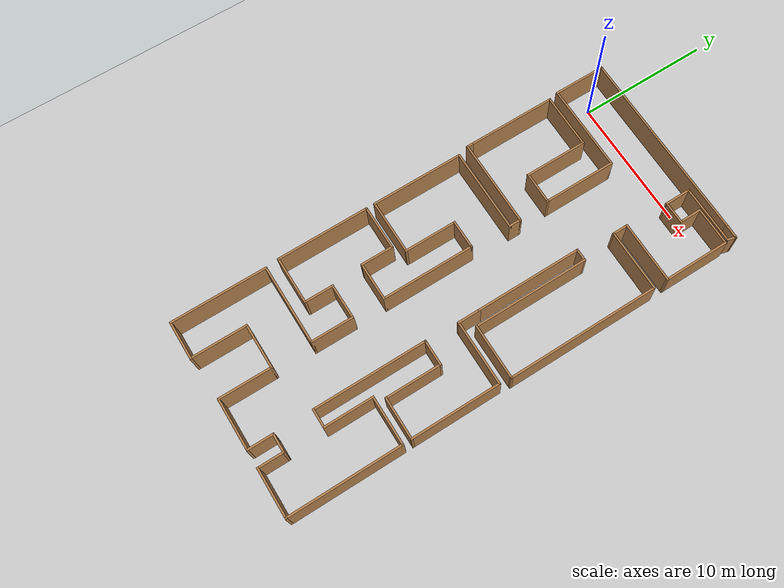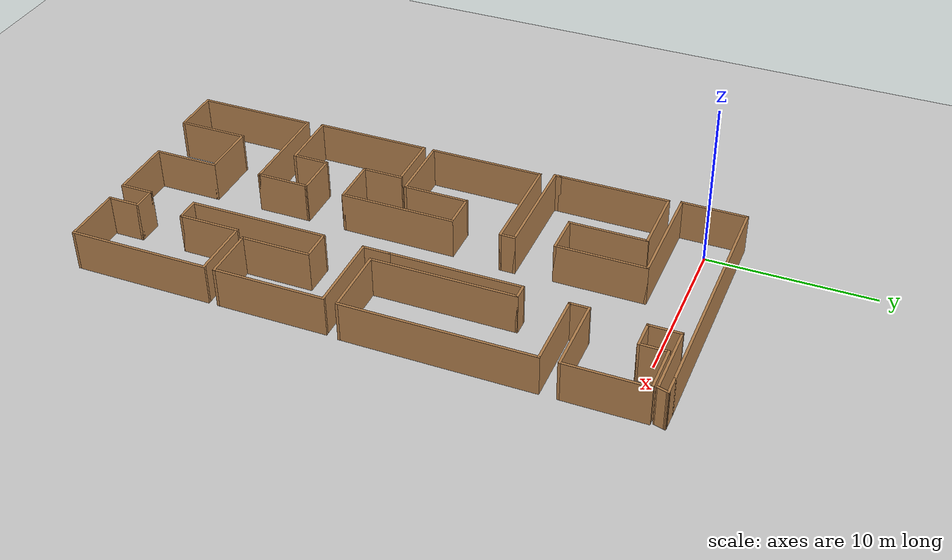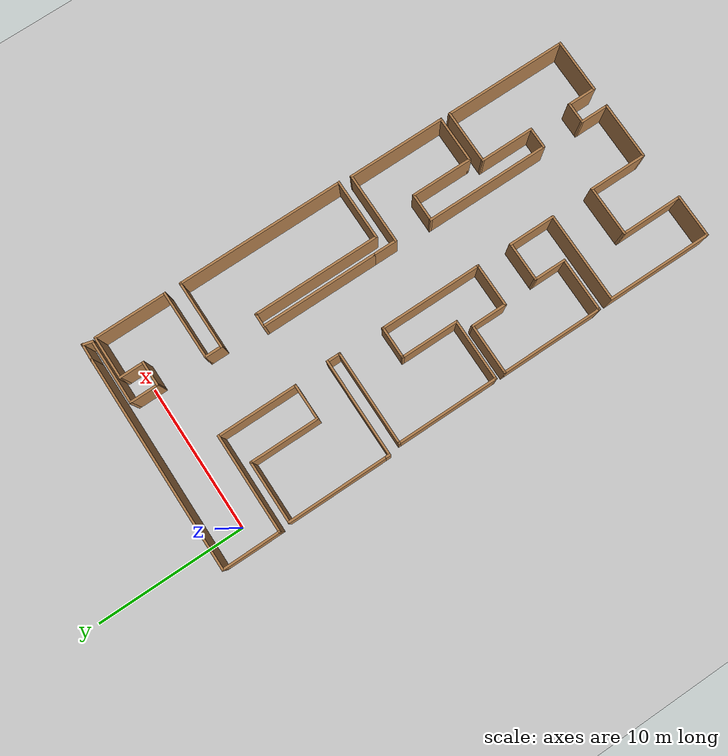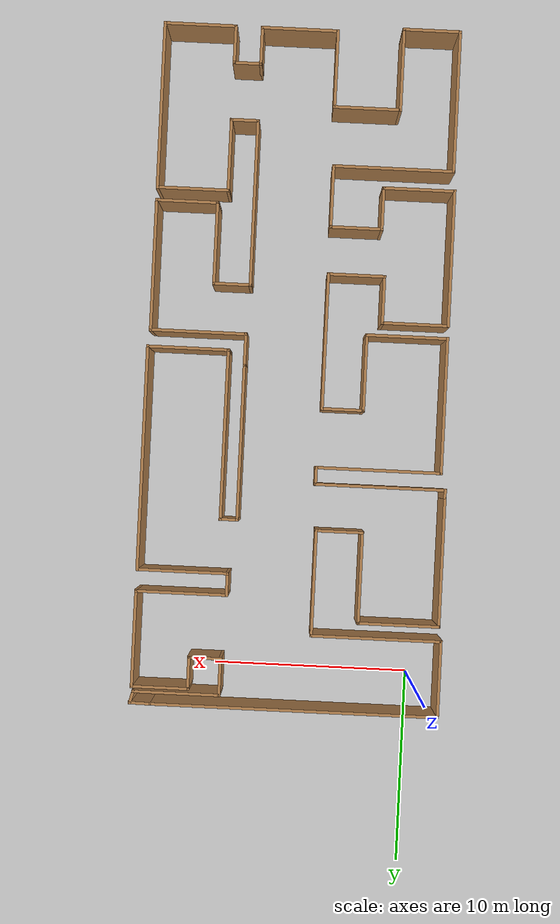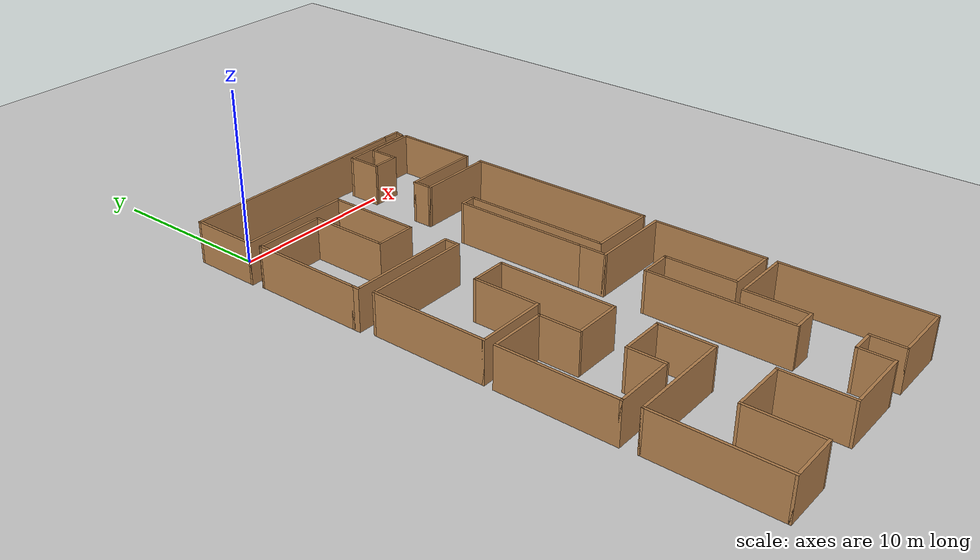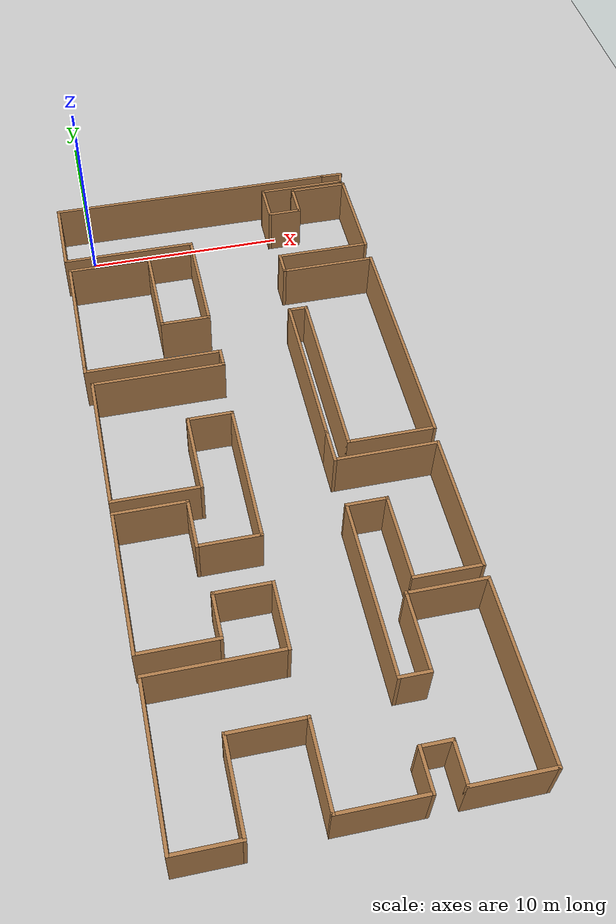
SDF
<sdf version="1.6">
 <world name="default">
  <model name="ground_plane">
   <static>1</static>
   <link name="link">
    <collision name="collision">
     <geometry><plane><normal>0 0 1</normal><size>100 100</size></plane></geometry>
     <surface>
      <contact><collide_bitmask>65535</collide_bitmask></contact>
      <friction><ode><mu>100</mu><mu2>50</mu2></ode></friction>
     </surface>
    </collision>
    <visual name="visual">
     <cast_shadows>0</cast_shadows>
     <geometry><plane><normal>0 0 1</normal><size>100 100</size></plane></geometry>
     <material>
      <script><uri>file://media/materials/scripts/gazebo.material</uri><name>Gazebo/Grey</name></script>
     </material>
    </visual>
   </link>
  </model>
  <model name="eight_comodos">
   <pose>6.30597 -15.5274 0 0 -0 -1.57142</pose>
   <link name="Wall_1">
    <collision name="Wall_1_Collision">
     <geometry><box><size>14.75 0.15 2.5</size></box></geometry>
     <pose>0 0 1.25 0 -0 0</pose>
    </collision>
    <visual name="Wall_1_Visual">
     <pose>0 0 1.25 0 -0 0</pose>
     <geometry><box><size>14.75 0.15 2.5</size></box></geometry>
     <material>
      <script><uri>file://media/materials/scripts/gazebo.material</uri><name>Gazebo/Wood</name></script>
      <ambient>1 1 1 1</ambient>
     </material>
     <meta><layer>0</layer></meta>
    </visual>
    <pose>-17.4243 -0.536073 0 0 -0 -1.5708</pose>
   </link>
   <link name="Wall_10">
    <collision name="Wall_10_Collision">
     <geometry><box><size>0.5 0.15 2.5</size></box></geometry>
     <pose>0 0 1.25 0 -0 0</pose>
    </collision>
    <visual name="Wall_10_Visual">
     <pose>0 0 1.25 0 -0 0</pose>
     <geometry><box><size>0.5 0.15 2.5</size></box></geometry>
     <material>
      <script><uri>file://media/materials/scripts/gazebo.material</uri><name>Gazebo/Wood</name></script>
      <ambient>1 1 1 1</ambient>
     </material>
     <meta><layer>0</layer></meta>
    </visual>
    <pose>-6.04928 -7.68607 0 0 -0 0</pose>
   </link>
   <link name="Wall_11">
    <collision name="Wall_11_Collision">
     <geometry><box><size>6.75 0.15 2.5</size></box></geometry>
     <pose>0 0 1.25 0 -0 0</pose>
    </collision>
    <visual name="Wall_11_Visual">
     <pose>0 0 1.25 0 -0 0</pose>
     <geometry><box><size>6.75 0.15 2.5</size></box></geometry>
     <material>
      <script><uri>file://media/materials/scripts/gazebo.material</uri><name>Gazebo/Wood</name></script>
      <ambient>1 1 1 1</ambient>
     </material>
     <meta><layer>0</layer></meta>
    </visual>
    <pose>-5.87428 -4.38607 0 0 -0 1.5708</pose>
   </link>
   <link name="Wall_12">
    <collision name="Wall_12_Collision">
     <geometry><box><size>1 0.15 2.5</size></box></geometry>
     <pose>0 0 1.25 0 -0 0</pose>
    </collision>
    <visual name="Wall_12_Visual">
     <pose>0 0 1.25 0 -0 0</pose>
     <geometry><box><size>1 0.15 2.5</size></box></geometry>
     <material>
      <script><uri>file://media/materials/scripts/gazebo.material</uri><name>Gazebo/Wood</name></script>
      <ambient>1 1 1 1</ambient>
     </material>
     <meta><layer>0</layer></meta>
    </visual>
    <pose>-5.44928 -1.08607 0 0 -0 0</pose>
   </link>
   <link name="Wall_13">
    <collision name="Wall_13_Collision">
     <geometry><box><size>6.5 0.15 2.5</size></box></geometry>
     <pose>0 0 1.25 0 -0 0</pose>
    </collision>
    <visual name="Wall_13_Visual">
     <pose>0 0 1.25 0 -0 0</pose>
     <geometry><box><size>6.5 0.15 2.5</size></box></geometry>
     <material>
      <script><uri>file://media/materials/scripts/gazebo.material</uri><name>Gazebo/Wood</name></script>
      <ambient>1 1 1 1</ambient>
     </material>
     <meta><layer>0</layer></meta>
    </visual>
    <pose>-5.02428 -4.26107 0 0 -0 -1.5708</pose>
   </link>
   <link name="Wall_14">
    <collision name="Wall_14_Collision">
     <geometry><box><size>7 0.15 2.5</size></box></geometry>
     <pose>0 0 1.25 0 -0 0</pose>
    </collision>
    <visual name="Wall_14_Visual">
     <pose>0 0 1.25 0 -0 0</pose>
     <geometry><box><size>7 0.15 2.5</size></box></geometry>
     <material>
      <script><uri>file://media/materials/scripts/gazebo.material</uri><name>Gazebo/Wood</name></script>
      <ambient>1 1 1 1</ambient>
     </material>
     <meta><layer>0</layer></meta>
    </visual>
    <pose>-1.59928 -7.43607 0 0 -0 0</pose>
   </link>
   <link name="Wall_15">
    <collision name="Wall_15_Collision">
     <geometry><box><size>4.25 0.15 2.5</size></box></geometry>
     <pose>0 0 1.25 0 -0 0</pose>
    </collision>
    <visual name="Wall_15_Visual">
     <pose>0 0 1.25 0 -0 0</pose>
     <geometry><box><size>4.25 0.15 2.5</size></box></geometry>
     <material>
      <script><uri>file://media/materials/scripts/gazebo.material</uri><name>Gazebo/Wood</name></script>
      <ambient>1 1 1 1</ambient>
     </material>
     <meta><layer>0</layer></meta>
    </visual>
    <pose>1.82572 -5.38607 0 0 -0 1.5708</pose>
   </link>
   <link name="Wall_16">
    <collision name="Wall_16_Collision">
     <geometry><box><size>4 0.15 2.5</size></box></geometry>
     <pose>0 0 1.25 0 -0 0</pose>
    </collision>
    <visual name="Wall_16_Visual">
     <pose>0 0 1.25 0 -0 0</pose>
     <geometry><box><size>4 0.15 2.5</size></box></geometry>
     <material>
      <script><uri>file://media/materials/scripts/gazebo.material</uri><name>Gazebo/Wood</name></script>
      <ambient>1 1 1 1</ambient>
     </material>
     <meta><layer>0</layer></meta>
    </visual>
    <pose>-0.09928 -3.33607 0 0 -0 3.14159</pose>
   </link>
   <link name="Wall_17">
    <collision name="Wall_17_Collision">
     <geometry><box><size>2.25 0.15 2.5</size></box></geometry>
     <pose>0 0 1.25 0 -0 0</pose>
    </collision>
    <visual name="Wall_17_Visual">
     <pose>0 0 1.25 0 -0 0</pose>
     <geometry><box><size>2.25 0.15 2.5</size></box></geometry>
     <material>
      <script><uri>file://media/materials/scripts/gazebo.material</uri><name>Gazebo/Wood</name></script>
      <ambient>1 1 1 1</ambient>
     </material>
     <meta><layer>0</layer></meta>
    </visual>
    <pose>-2.02428 -2.28607 0 0 -0 1.5708</pose>
   </link>
   <link name="Wall_18">
    <collision name="Wall_18_Collision">
     <geometry><box><size>7 0.15 2.5</size></box></geometry>
     <pose>0 0 1.25 0 -0 0</pose>
    </collision>
    <visual name="Wall_18_Visual">
     <pose>0 0 1.25 0 -0 0</pose>
     <geometry><box><size>7 0.15 2.5</size></box></geometry>
     <material>
      <script><uri>file://media/materials/scripts/gazebo.material</uri><name>Gazebo/Wood</name></script>
      <ambient>1 1 1 1</ambient>
     </material>
     <meta><layer>0</layer></meta>
    </visual>
    <pose>1.40072 -1.23607 0 0 -0 0</pose>
   </link>
   <link name="Wall_19">
    <collision name="Wall_19_Collision">
     <geometry><box><size>3 0.15 2.5</size></box></geometry>
     <pose>0 0 1.25 0 -0 0</pose>
    </collision>
    <visual name="Wall_19_Visual">
     <pose>0 0 1.25 0 -0 0</pose>
     <geometry><box><size>3 0.15 2.5</size></box></geometry>
     <material>
      <script><uri>file://media/materials/scripts/gazebo.material</uri><name>Gazebo/Wood</name></script>
      <ambient>1 1 1 1</ambient>
     </material>
     <meta><layer>0</layer></meta>
    </visual>
    <pose>4.82572 -2.66107 0 0 -0 -1.5708</pose>
   </link>
   <link name="Wall_2">
    <collision name="Wall_2_Collision">
     <geometry><box><size>4 0.15 2.5</size></box></geometry>
     <pose>0 0 1.25 0 -0 0</pose>
    </collision>
    <visual name="Wall_2_Visual">
     <pose>0 0 1.25 0 -0 0</pose>
     <geometry><box><size>4 0.15 2.5</size></box></geometry>
     <material>
      <script><uri>file://media/materials/scripts/gazebo.material</uri><name>Gazebo/Wood</name></script>
      <ambient>1 1 1 1</ambient>
     </material>
     <meta><layer>0</layer></meta>
    </visual>
    <pose>-15.4993 -7.83607 0 0 -0 0</pose>
   </link>
   <link name="Wall_20">
    <collision name="Wall_20_Collision">
     <geometry><box><size>2.5 0.15 2.5</size></box></geometry>
     <pose>0 0 1.25 0 -0 0</pose>
    </collision>
    <visual name="Wall_20_Visual">
     <pose>0 0 1.25 0 -0 0</pose>
     <geometry><box><size>2.5 0.15 2.5</size></box></geometry>
     <material>
      <script><uri>file://media/materials/scripts/gazebo.material</uri><name>Gazebo/Wood</name></script>
      <ambient>1 1 1 1</ambient>
     </material>
     <meta><layer>0</layer></meta>
    </visual>
    <pose>3.65072 -4.08607 0 0 -0 3.14159</pose>
   </link>
   <link name="Wall_21">
    <collision name="Wall_21_Collision">
     <geometry><box><size>3.5 0.15 2.5</size></box></geometry>
     <pose>0 0 1.25 0 -0 0</pose>
    </collision>
    <visual name="Wall_21_Visual">
     <pose>0 0 1.25 0 -0 0</pose>
     <geometry><box><size>3.5 0.15 2.5</size></box></geometry>
     <material>
      <script><uri>file://media/materials/scripts/gazebo.material</uri><name>Gazebo/Wood</name></script>
      <ambient>1 1 1 1</ambient>
     </material>
     <meta><layer>0</layer></meta>
    </visual>
    <pose>2.47572 -5.76107 0 0 -0 -1.5708</pose>
   </link>
   <link name="Wall_22">
    <collision name="Wall_22_Collision">
     <geometry><box><size>7 0.15 2.5</size></box></geometry>
     <pose>0 0 1.25 0 -0 0</pose>
    </collision>
    <visual name="Wall_22_Visual">
     <pose>0 0 1.25 0 -0 0</pose>
     <geometry><box><size>7 0.15 2.5</size></box></geometry>
     <material>
      <script><uri>file://media/materials/scripts/gazebo.material</uri><name>Gazebo/Wood</name></script>
      <ambient>1 1 1 1</ambient>
     </material>
     <meta><layer>0</layer></meta>
    </visual>
    <pose>5.90072 -7.43607 0 0 -0 0</pose>
   </link>
   <link name="Wall_23">
    <collision name="Wall_23_Collision">
     <geometry><box><size>3.75 0.15 2.5</size></box></geometry>
     <pose>0 0 1.25 0 -0 0</pose>
    </collision>
    <visual name="Wall_23_Visual">
     <pose>0 0 1.25 0 -0 0</pose>
     <geometry><box><size>3.75 0.15 2.5</size></box></geometry>
     <material>
      <script><uri>file://media/materials/scripts/gazebo.material</uri><name>Gazebo/Wood</name></script>
      <ambient>1 1 1 1</ambient>
     </material>
     <meta><layer>0</layer></meta>
    </visual>
    <pose>9.32572 -5.63607 0 0 -0 1.5708</pose>
   </link>
   <link name="Wall_24">
    <collision name="Wall_24_Collision">
     <geometry><box><size>2.25 0.15 2.5</size></box></geometry>
     <pose>0 0 1.25 0 -0 0</pose>
    </collision>
    <visual name="Wall_24_Visual">
     <pose>0 0 1.25 0 -0 0</pose>
     <geometry><box><size>2.25 0.15 2.5</size></box></geometry>
     <material>
      <script><uri>file://media/materials/scripts/gazebo.material</uri><name>Gazebo/Wood</name></script>
      <ambient>1 1 1 1</ambient>
     </material>
     <meta><layer>0</layer></meta>
    </visual>
    <pose>8.27572 -3.83607 0 0 -0 3.14159</pose>
   </link>
   <link name="Wall_25">
    <collision name="Wall_25_Collision">
     <geometry><box><size>2.75 0.15 2.5</size></box></geometry>
     <pose>0 0 1.25 0 -0 0</pose>
    </collision>
    <visual name="Wall_25_Visual">
     <pose>0 0 1.25 0 -0 0</pose>
     <geometry><box><size>2.75 0.15 2.5</size></box></geometry>
     <material>
      <script><uri>file://media/materials/scripts/gazebo.material</uri><name>Gazebo/Wood</name></script>
      <ambient>1 1 1 1</ambient>
     </material>
     <meta><layer>0</layer></meta>
    </visual>
    <pose>7.22572 -2.53607 0 0 -0 1.5708</pose>
   </link>
   <link name="Wall_26">
    <collision name="Wall_26_Collision">
     <geometry><box><size>3.25 0.15 2.5</size></box></geometry>
     <pose>0 0 1.25 0 -0 0</pose>
    </collision>
    <visual name="Wall_26_Visual">
     <pose>0 0 1.25 0 -0 0</pose>
     <geometry><box><size>3.25 0.15 2.5</size></box></geometry>
     <material>
      <script><uri>file://media/materials/scripts/gazebo.material</uri><name>Gazebo/Wood</name></script>
      <ambient>1 1 1 1</ambient>
     </material>
     <meta><layer>0</layer></meta>
    </visual>
    <pose>8.77572 -1.23607 0 0 -0 0</pose>
   </link>
   <link name="Wall_27">
    <collision name="Wall_27_Collision">
     <geometry><box><size>6.25 0.15 2.5</size></box></geometry>
     <pose>0 0 1.25 0 -0 0</pose>
    </collision>
    <visual name="Wall_27_Visual">
     <pose>0 0 1.25 0 -0 0</pose>
     <geometry><box><size>6.25 0.15 2.5</size></box></geometry>
     <material>
      <script><uri>file://media/materials/scripts/gazebo.material</uri><name>Gazebo/Wood</name></script>
      <ambient>1 1 1 1</ambient>
     </material>
     <meta><layer>0</layer></meta>
    </visual>
    <pose>10.3257 -4.28607 0 0 -0 -1.5708</pose>
   </link>
   <link name="Wall_28">
    <collision name="Wall_28_Collision">
     <geometry><box><size>7.25 0.15 2.5</size></box></geometry>
     <pose>0 0 1.25 0 -0 0</pose>
    </collision>
    <visual name="Wall_28_Visual">
     <pose>0 0 1.25 0 -0 0</pose>
     <geometry><box><size>7.25 0.15 2.5</size></box></geometry>
     <material>
      <script><uri>file://media/materials/scripts/gazebo.material</uri><name>Gazebo/Wood</name></script>
      <ambient>1 1 1 1</ambient>
     </material>
     <meta><layer>0</layer></meta>
    </visual>
    <pose>13.8757 -7.33607 0 0 -0 0</pose>
   </link>
   <link name="Wall_29">
    <collision name="Wall_29_Collision">
     <geometry><box><size>3 0.15 2.5</size></box></geometry>
     <pose>0 0 1.25 0 -0 0</pose>
    </collision>
    <visual name="Wall_29_Visual">
     <pose>0 0 1.25 0 -0 0</pose>
     <geometry><box><size>3 0.15 2.5</size></box></geometry>
     <material>
      <script><uri>file://media/materials/scripts/gazebo.material</uri><name>Gazebo/Wood</name></script>
      <ambient>1 1 1 1</ambient>
     </material>
     <meta><layer>0</layer></meta>
    </visual>
    <pose>17.4257 -5.91107 0 0 -0 1.5708</pose>
   </link>
   <link name="Wall_3">
    <collision name="Wall_3_Collision">
     <geometry><box><size>6.75 0.15 2.5</size></box></geometry>
     <pose>0 0 1.25 0 -0 0</pose>
    </collision>
    <visual name="Wall_3_Visual">
     <pose>0 0 1.25 0 -0 0</pose>
     <geometry><box><size>6.75 0.15 2.5</size></box></geometry>
     <material>
      <script><uri>file://media/materials/scripts/gazebo.material</uri><name>Gazebo/Wood</name></script>
      <ambient>1 1 1 1</ambient>
     </material>
     <meta><layer>0</layer></meta>
    </visual>
    <pose>-13.5743 -4.53607 0 0 -0 1.5708</pose>
   </link>
   <link name="Wall_30">
    <collision name="Wall_30_Collision">
     <geometry><box><size>4.25 0.15 2.5</size></box></geometry>
     <pose>0 0 1.25 0 -0 0</pose>
    </collision>
    <visual name="Wall_30_Visual">
     <pose>0 0 1.25 0 -0 0</pose>
     <geometry><box><size>4.25 0.15 2.5</size></box></geometry>
     <material>
      <script><uri>file://media/materials/scripts/gazebo.material</uri><name>Gazebo/Wood</name></script>
      <ambient>1 1 1 1</ambient>
     </material>
     <meta><layer>0</layer></meta>
    </visual>
    <pose>15.3757 -4.48607 0 0 -0 3.14159</pose>
   </link>
   <link name="Wall_31">
    <collision name="Wall_31_Collision">
     <geometry><box><size>3.5 0.15 2.5</size></box></geometry>
     <pose>0 0 1.25 0 -0 0</pose>
    </collision>
    <visual name="Wall_31_Visual">
     <pose>0 0 1.25 0 -0 0</pose>
     <geometry><box><size>3.5 0.15 2.5</size></box></geometry>
     <material>
      <script><uri>file://media/materials/scripts/gazebo.material</uri><name>Gazebo/Wood</name></script>
      <ambient>1 1 1 1</ambient>
     </material>
     <meta><layer>0</layer></meta>
    </visual>
    <pose>13.3257 -2.81107 0 0 -0 1.5708</pose>
   </link>
   <link name="Wall_32">
    <collision name="Wall_32_Collision">
     <geometry><box><size>4 0.15 2.5</size></box></geometry>
     <pose>0 0 1.25 0 -0 0</pose>
    </collision>
    <visual name="Wall_32_Visual">
     <pose>0 0 1.25 0 -0 0</pose>
     <geometry><box><size>4 0.15 2.5</size></box></geometry>
     <material>
      <script><uri>file://media/materials/scripts/gazebo.material</uri><name>Gazebo/Wood</name></script>
      <ambient>1 1 1 1</ambient>
     </material>
     <meta><layer>0</layer></meta>
    </visual>
    <pose>15.2507 -1.13607 0 0 -0 0</pose>
   </link>
   <link name="Wall_33">
    <collision name="Wall_33_Collision">
     <geometry><box><size>4 0.15 2.5</size></box></geometry>
     <pose>0 0 1.25 0 -0 0</pose>
    </collision>
    <visual name="Wall_33_Visual">
     <pose>0 0 1.25 0 -0 0</pose>
     <geometry><box><size>4 0.15 2.5</size></box></geometry>
     <material>
      <script><uri>file://media/materials/scripts/gazebo.material</uri><name>Gazebo/Wood</name></script>
      <ambient>1 1 1 1</ambient>
     </material>
     <meta><layer>0</layer></meta>
    </visual>
    <pose>17.1757 0.788927 0 0 -0 1.5708</pose>
   </link>
   <link name="Wall_34">
    <collision name="Wall_34_Collision">
     <geometry><box><size>2 0.15 2.5</size></box></geometry>
     <pose>0 0 1.25 0 -0 0</pose>
    </collision>
    <visual name="Wall_34_Visual">
     <pose>0 0 1.25 0 -0 0</pose>
     <geometry><box><size>2 0.15 2.5</size></box></geometry>
     <material>
      <script><uri>file://media/materials/scripts/gazebo.material</uri><name>Gazebo/Wood</name></script>
      <ambient>1 1 1 1</ambient>
     </material>
     <meta><layer>0</layer></meta>
    </visual>
    <pose>16.2507 2.71393 0 0 -0 3.14159</pose>
   </link>
   <link name="Wall_35">
    <collision name="Wall_35_Collision">
     <geometry><box><size>1.5 0.15 2.5</size></box></geometry>
     <pose>0 0 1.25 0 -0 0</pose>
    </collision>
    <visual name="Wall_35_Visual">
     <pose>0 0 1.25 0 -0 0</pose>
     <geometry><box><size>1.5 0.15 2.5</size></box></geometry>
     <material>
      <script><uri>file://media/materials/scripts/gazebo.material</uri><name>Gazebo/Wood</name></script>
      <ambient>1 1 1 1</ambient>
     </material>
     <meta><layer>0</layer></meta>
    </visual>
    <pose>15.3257 3.38893 0 0 -0 1.5708</pose>
   </link>
   <link name="Wall_36">
    <collision name="Wall_36_Collision">
     <geometry><box><size>2 0.15 2.5</size></box></geometry>
     <pose>0 0 1.25 0 -0 0</pose>
    </collision>
    <visual name="Wall_36_Visual">
     <pose>0 0 1.25 0 -0 0</pose>
     <geometry><box><size>2 0.15 2.5</size></box></geometry>
     <material>
      <script><uri>file://media/materials/scripts/gazebo.material</uri><name>Gazebo/Wood</name></script>
      <ambient>1 1 1 1</ambient>
     </material>
     <meta><layer>0</layer></meta>
    </visual>
    <pose>16.2507 4.06393 0 0 -0 0</pose>
   </link>
   <link name="Wall_37">
    <collision name="Wall_37_Collision">
     <geometry><box><size>3.75 0.15 2.5</size></box></geometry>
     <pose>0 0 1.25 0 -0 0</pose>
    </collision>
    <visual name="Wall_37_Visual">
     <pose>0 0 1.25 0 -0 0</pose>
     <geometry><box><size>3.75 0.15 2.5</size></box></geometry>
     <material>
      <script><uri>file://media/materials/scripts/gazebo.material</uri><name>Gazebo/Wood</name></script>
      <ambient>1 1 1 1</ambient>
     </material>
     <meta><layer>0</layer></meta>
    </visual>
    <pose>17.1757 5.86393 0 0 -0 1.5708</pose>
   </link>
   <link name="Wall_38">
    <collision name="Wall_38_Collision">
     <geometry><box><size>8.5 0.15 2.5</size></box></geometry>
     <pose>0 0 1.25 0 -0 0</pose>
    </collision>
    <visual name="Wall_38_Visual">
     <pose>0 0 1.25 0 -0 0</pose>
     <geometry><box><size>8.5 0.15 2.5</size></box></geometry>
     <material>
      <script><uri>file://media/materials/scripts/gazebo.material</uri><name>Gazebo/Wood</name></script>
      <ambient>1 1 1 1</ambient>
     </material>
     <meta><layer>0</layer></meta>
    </visual>
    <pose>13.0007 7.66393 0 0 -0 3.14159</pose>
   </link>
   <link name="Wall_39">
    <collision name="Wall_39_Collision">
     <geometry><box><size>3.75 0.15 2.5</size></box></geometry>
     <pose>0 0 1.25 0 -0 0</pose>
    </collision>
    <visual name="Wall_39_Visual">
     <pose>0 0 1.25 0 -0 0</pose>
     <geometry><box><size>3.75 0.15 2.5</size></box></geometry>
     <material>
      <script><uri>file://media/materials/scripts/gazebo.material</uri><name>Gazebo/Wood</name></script>
      <ambient>1 1 1 1</ambient>
     </material>
     <meta><layer>0</layer></meta>
    </visual>
    <pose>8.82572 5.86393 0 0 -0 -1.5708</pose>
   </link>
   <link name="Wall_4">
    <collision name="Wall_4_Collision">
     <geometry><box><size>5.5 0.15 2.5</size></box></geometry>
     <pose>0 0 1.25 0 -0 0</pose>
    </collision>
    <visual name="Wall_4_Visual">
     <pose>0 0 1.25 0 -0 0</pose>
     <geometry><box><size>5.5 0.15 2.5</size></box></geometry>
     <material>
      <script><uri>file://media/materials/scripts/gazebo.material</uri><name>Gazebo/Wood</name></script>
      <ambient>1 1 1 1</ambient>
     </material>
     <meta><layer>0</layer></meta>
    </visual>
    <pose>-10.8993 -1.23607 0 0 -0 0</pose>
   </link>
   <link name="Wall_40">
    <collision name="Wall_40_Collision">
     <geometry><box><size>3.75 0.15 2.5</size></box></geometry>
     <pose>0 0 1.25 0 -0 0</pose>
    </collision>
    <visual name="Wall_40_Visual">
     <pose>0 0 1.25 0 -0 0</pose>
     <geometry><box><size>3.75 0.15 2.5</size></box></geometry>
     <material>
      <script><uri>file://media/materials/scripts/gazebo.material</uri><name>Gazebo/Wood</name></script>
      <ambient>1 1 1 1</ambient>
     </material>
     <meta><layer>0</layer></meta>
    </visual>
    <pose>10.6257 4.06393 0 0 -0 0</pose>
   </link>
   <link name="Wall_41">
    <collision name="Wall_41_Collision">
     <geometry><box><size>1.5 0.15 2.5</size></box></geometry>
     <pose>0 0 1.25 0 -0 0</pose>
    </collision>
    <visual name="Wall_41_Visual">
     <pose>0 0 1.25 0 -0 0</pose>
     <geometry><box><size>1.5 0.15 2.5</size></box></geometry>
     <material>
      <script><uri>file://media/materials/scripts/gazebo.material</uri><name>Gazebo/Wood</name></script>
      <ambient>1 1 1 1</ambient>
     </material>
     <meta><layer>0</layer></meta>
    </visual>
    <pose>12.4257 3.38893 0 0 -0 -1.5708</pose>
   </link>
   <link name="Wall_42">
    <collision name="Wall_42_Collision">
     <geometry><box><size>8.5 0.15 2.5</size></box></geometry>
     <pose>0 0 1.25 0 -0 0</pose>
    </collision>
    <visual name="Wall_42_Visual">
     <pose>0 0 1.25 0 -0 0</pose>
     <geometry><box><size>8.5 0.15 2.5</size></box></geometry>
     <material>
      <script><uri>file://media/materials/scripts/gazebo.material</uri><name>Gazebo/Wood</name></script>
      <ambient>1 1 1 1</ambient>
     </material>
     <meta><layer>0</layer></meta>
    </visual>
    <pose>8.25072 2.71393 0 0 -0 3.14159</pose>
   </link>
   <link name="Wall_43">
    <collision name="Wall_43_Collision">
     <geometry><box><size>2 0.15 2.5</size></box></geometry>
     <pose>0 0 1.25 0 -0 0</pose>
    </collision>
    <visual name="Wall_43_Visual">
     <pose>0 0 1.25 0 -0 0</pose>
     <geometry><box><size>2 0.15 2.5</size></box></geometry>
     <material>
      <script><uri>file://media/materials/scripts/gazebo.material</uri><name>Gazebo/Wood</name></script>
      <ambient>1 1 1 1</ambient>
     </material>
     <meta><layer>0</layer></meta>
    </visual>
    <pose>4.07572 3.63893 0 0 -0 1.5708</pose>
   </link>
   <link name="Wall_44">
    <collision name="Wall_44_Collision">
     <geometry><box><size>4.25 0.15 2.5</size></box></geometry>
     <pose>0 0 1.25 0 -0 0</pose>
    </collision>
    <visual name="Wall_44_Visual">
     <pose>0 0 1.25 0 -0 0</pose>
     <geometry><box><size>4.25 0.15 2.5</size></box></geometry>
     <material>
      <script><uri>file://media/materials/scripts/gazebo.material</uri><name>Gazebo/Wood</name></script>
      <ambient>1 1 1 1</ambient>
     </material>
     <meta><layer>0</layer></meta>
    </visual>
    <pose>6.12572 4.56393 0 0 -0 0</pose>
   </link>
   <link name="Wall_45">
    <collision name="Wall_45_Collision">
     <geometry><box><size>3.25 0.15 2.5</size></box></geometry>
     <pose>0 0 1.25 0 -0 0</pose>
    </collision>
    <visual name="Wall_45_Visual">
     <pose>0 0 1.25 0 -0 0</pose>
     <geometry><box><size>3.25 0.15 2.5</size></box></geometry>
     <material>
      <script><uri>file://media/materials/scripts/gazebo.material</uri><name>Gazebo/Wood</name></script>
      <ambient>1 1 1 1</ambient>
     </material>
     <meta><layer>0</layer></meta>
    </visual>
    <pose>8.17572 6.11393 0 0 -0 1.5708</pose>
   </link>
   <link name="Wall_46">
    <collision name="Wall_46_Collision">
     <geometry><box><size>6.75 0.15 2.5</size></box></geometry>
     <pose>0 0 1.25 0 -0 0</pose>
    </collision>
    <visual name="Wall_46_Visual">
     <pose>0 0 1.25 0 -0 0</pose>
     <geometry><box><size>6.75 0.15 2.5</size></box></geometry>
     <material>
      <script><uri>file://media/materials/scripts/gazebo.material</uri><name>Gazebo/Wood</name></script>
      <ambient>1 1 1 1</ambient>
     </material>
     <meta><layer>0</layer></meta>
    </visual>
    <pose>4.87572 7.66393 0 0 -0 3.14159</pose>
   </link>
   <link name="Wall_47">
    <collision name="Wall_47_Collision">
     <geometry><box><size>5 0.15 2.5</size></box></geometry>
     <pose>0 0 1.25 0 -0 0</pose>
    </collision>
    <visual name="Wall_47_Visual">
     <pose>0 0 1.25 0 -0 0</pose>
     <geometry><box><size>5 0.15 2.5</size></box></geometry>
     <material>
      <script><uri>file://media/materials/scripts/gazebo.material</uri><name>Gazebo/Wood</name></script>
      <ambient>1 1 1 1</ambient>
     </material>
     <meta><layer>0</layer></meta>
    </visual>
    <pose>1.57572 5.23893 0 0 -0 -1.5708</pose>
   </link>
   <link name="Wall_48">
    <collision name="Wall_48_Collision">
     <geometry><box><size>1.75 0.15 2.5</size></box></geometry>
     <pose>0 0 1.25 0 -0 0</pose>
    </collision>
    <visual name="Wall_48_Visual">
     <pose>0 0 1.25 0 -0 0</pose>
     <geometry><box><size>1.75 0.15 2.5</size></box></geometry>
     <material>
      <script><uri>file://media/materials/scripts/gazebo.material</uri><name>Gazebo/Wood</name></script>
      <ambient>1 1 1 1</ambient>
     </material>
     <meta><layer>0</layer></meta>
    </visual>
    <pose>0.775719 2.81393 0 0 -0 3.14159</pose>
   </link>
   <link name="Wall_49">
    <collision name="Wall_49_Collision">
     <geometry><box><size>8 0.15 2.5</size></box></geometry>
     <pose>0 0 1.25 0 -0 0</pose>
    </collision>
    <visual name="Wall_49_Visual">
     <pose>0 0 1.25 0 -0 0</pose>
     <geometry><box><size>8 0.15 2.5</size></box></geometry>
     <material>
      <script><uri>file://media/materials/scripts/gazebo.material</uri><name>Gazebo/Wood</name></script>
      <ambient>1 1 1 1</ambient>
     </material>
     <meta><layer>0</layer></meta>
    </visual>
    <pose>-3.94928 2.81393 0 0 -0 3.14159</pose>
   </link>
   <link name="Wall_5">
    <collision name="Wall_5_Collision">
     <geometry><box><size>2.5 0.15 2.5</size></box></geometry>
     <pose>0 0 1.25 0 -0 0</pose>
    </collision>
    <visual name="Wall_5_Visual">
     <pose>0 0 1.25 0 -0 0</pose>
     <geometry><box><size>2.5 0.15 2.5</size></box></geometry>
     <material>
      <script><uri>file://media/materials/scripts/gazebo.material</uri><name>Gazebo/Wood</name></script>
      <ambient>1 1 1 1</ambient>
     </material>
     <meta><layer>0</layer></meta>
    </visual>
    <pose>-8.22428 -2.41107 0 0 -0 -1.5708</pose>
   </link>
   <link name="Wall_50">
    <collision name="Wall_50_Collision">
     <geometry><box><size>1 0.15 2.5</size></box></geometry>
     <pose>0 0 1.25 0 -0 0</pose>
    </collision>
    <visual name="Wall_50_Visual">
     <pose>0 0 1.25 0 -0 0</pose>
     <geometry><box><size>1 0.15 2.5</size></box></geometry>
     <material>
      <script><uri>file://media/materials/scripts/gazebo.material</uri><name>Gazebo/Wood</name></script>
      <ambient>1 1 1 1</ambient>
     </material>
     <meta><layer>0</layer></meta>
    </visual>
    <pose>-7.87428 3.23893 0 0 -0 1.5708</pose>
   </link>
   <link name="Wall_51">
    <collision name="Wall_51_Collision">
     <geometry><box><size>8.75 0.15 2.5</size></box></geometry>
     <pose>0 0 1.25 0 -0 0</pose>
    </collision>
    <visual name="Wall_51_Visual">
     <pose>0 0 1.25 0 -0 0</pose>
     <geometry><box><size>8.75 0.15 2.5</size></box></geometry>
     <material>
      <script><uri>file://media/materials/scripts/gazebo.material</uri><name>Gazebo/Wood</name></script>
      <ambient>1 1 1 1</ambient>
     </material>
     <meta><layer>0</layer></meta>
    </visual>
    <pose>-3.57428 3.66393 0 0 -0 0</pose>
   </link>
   <link name="Wall_52">
    <collision name="Wall_52_Collision">
     <geometry><box><size>4.25 0.15 2.5</size></box></geometry>
     <pose>0 0 1.25 0 -0 0</pose>
    </collision>
    <visual name="Wall_52_Visual">
     <pose>0 0 1.25 0 -0 0</pose>
     <geometry><box><size>4.25 0.15 2.5</size></box></geometry>
     <material>
      <script><uri>file://media/materials/scripts/gazebo.material</uri><name>Gazebo/Wood</name></script>
      <ambient>1 1 1 1</ambient>
     </material>
     <meta><layer>0</layer></meta>
    </visual>
    <pose>0.725719 5.71393 0 0 -0 1.5708</pose>
   </link>
   <link name="Wall_53">
    <collision name="Wall_53_Collision">
     <geometry><box><size>11.5 0.15 2.5</size></box></geometry>
     <pose>0 0 1.25 0 -0 0</pose>
    </collision>
    <visual name="Wall_53_Visual">
     <pose>0 0 1.25 0 -0 0</pose>
     <geometry><box><size>11.5 0.15 2.5</size></box></geometry>
     <material>
      <script><uri>file://media/materials/scripts/gazebo.material</uri><name>Gazebo/Wood</name></script>
      <ambient>1 1 1 1</ambient>
     </material>
     <meta><layer>0</layer></meta>
    </visual>
    <pose>-4.94928 7.76393 0 0 -0 3.14159</pose>
   </link>
   <link name="Wall_54">
    <collision name="Wall_54_Collision">
     <geometry><box><size>4.75 0.15 2.5</size></box></geometry>
     <pose>0 0 1.25 0 -0 0</pose>
    </collision>
    <visual name="Wall_54_Visual">
     <pose>0 0 1.25 0 -0 0</pose>
     <geometry><box><size>4.75 0.15 2.5</size></box></geometry>
     <material>
      <script><uri>file://media/materials/scripts/gazebo.material</uri><name>Gazebo/Wood</name></script>
      <ambient>1 1 1 1</ambient>
     </material>
     <meta><layer>0</layer></meta>
    </visual>
    <pose>-10.6243 5.46393 0 0 -0 -1.5708</pose>
   </link>
   <link name="Wall_55">
    <collision name="Wall_55_Collision">
     <geometry><box><size>1.25 0.15 2.5</size></box></geometry>
     <pose>0 0 1.25 0 -0 0</pose>
    </collision>
    <visual name="Wall_55_Visual">
     <pose>0 0 1.25 0 -0 0</pose>
     <geometry><box><size>1.25 0.15 2.5</size></box></geometry>
     <material>
      <script><uri>file://media/materials/scripts/gazebo.material</uri><name>Gazebo/Wood</name></script>
      <ambient>1 1 1 1</ambient>
     </material>
     <meta><layer>0</layer></meta>
    </visual>
    <pose>-11.1743 3.16393 0 0 -0 3.14159</pose>
   </link>
   <link name="Wall_56">
    <collision name="Wall_56_Collision">
     <geometry><box><size>4.75 0.15 2.5</size></box></geometry>
     <pose>0 0 1.25 0 -0 0</pose>
    </collision>
    <visual name="Wall_56_Visual">
     <pose>0 0 1.25 0 -0 0</pose>
     <geometry><box><size>4.75 0.15 2.5</size></box></geometry>
     <material>
      <script><uri>file://media/materials/scripts/gazebo.material</uri><name>Gazebo/Wood</name></script>
      <ambient>1 1 1 1</ambient>
     </material>
     <meta><layer>0</layer></meta>
    </visual>
    <pose>-11.7243 5.46393 0 0 -0 1.5708</pose>
   </link>
   <link name="Wall_57">
    <collision name="Wall_57_Collision">
     <geometry><box><size>5 0.15 2.5</size></box></geometry>
     <pose>0 0 1.25 0 -0 0</pose>
    </collision>
    <visual name="Wall_57_Visual">
     <pose>0 0 1.25 0 -0 0</pose>
     <geometry><box><size>5 0.15 2.5</size></box></geometry>
     <material>
      <script><uri>file://media/materials/scripts/gazebo.material</uri><name>Gazebo/Wood</name></script>
      <ambient>1 1 1 1</ambient>
     </material>
     <meta><layer>0</layer></meta>
    </visual>
    <pose>-14.1493 7.76393 0 0 -0 3.14159</pose>
   </link>
   <link name="Wall_58">
    <collision name="Wall_58_Collision">
     <geometry><box><size>3 0.15 2.5</size></box></geometry>
     <pose>0 0 1.25 0 -0 0</pose>
    </collision>
    <visual name="Wall_58_Visual">
     <pose>0 0 1.25 0 -0 0</pose>
     <geometry><box><size>3 0.15 2.5</size></box></geometry>
     <material>
      <script><uri>file://media/materials/scripts/gazebo.material</uri><name>Gazebo/Wood</name></script>
      <ambient>1 1 1 1</ambient>
     </material>
     <meta><layer>0</layer></meta>
    </visual>
    <pose>-16.5743 6.33893 0 0 -0 -1.5708</pose>
   </link>
   <link name="Wall_59">
    <collision name="Wall_59_Collision">
     <geometry><box><size>1.75 0.15 2.5</size></box></geometry>
     <pose>0 0 1.25 0 -0 0</pose>
    </collision>
    <visual name="Wall_59_Visual">
     <pose>0 0 1.25 0 -0 0</pose>
     <geometry><box><size>1.75 0.15 2.5</size></box></geometry>
     <material>
      <script><uri>file://media/materials/scripts/gazebo.material</uri><name>Gazebo/Wood</name></script>
      <ambient>1 1 1 1</ambient>
     </material>
     <meta><layer>0</layer></meta>
    </visual>
    <pose>-15.7743 4.91393 0 0 -0 0</pose>
   </link>
   <link name="Wall_6">
    <collision name="Wall_6_Collision">
     <geometry><box><size>4.75 0.15 2.5</size></box></geometry>
     <pose>0 0 1.25 0 -0 0</pose>
    </collision>
    <visual name="Wall_6_Visual">
     <pose>0 0 1.25 0 -0 0</pose>
     <geometry><box><size>4.75 0.15 2.5</size></box></geometry>
     <material>
      <script><uri>file://media/materials/scripts/gazebo.material</uri><name>Gazebo/Wood</name></script>
      <ambient>1 1 1 1</ambient>
     </material>
     <meta><layer>0</layer></meta>
    </visual>
    <pose>-10.5243 -3.58607 0 0 -0 3.14159</pose>
   </link>
   <link name="Wall_60">
    <collision name="Wall_60_Collision">
     <geometry><box><size>1.75 0.15 2.5</size></box></geometry>
     <pose>0 0 1.25 0 -0 0</pose>
    </collision>
    <visual name="Wall_60_Visual">
     <pose>0 0 1.25 0 -0 0</pose>
     <geometry><box><size>1.75 0.15 2.5</size></box></geometry>
     <material>
      <script><uri>file://media/materials/scripts/gazebo.material</uri><name>Gazebo/Wood</name></script>
      <ambient>1 1 1 1</ambient>
     </material>
     <meta><layer>0</layer></meta>
    </visual>
    <pose>-14.9743 4.11393 0 0 -0 -1.5708</pose>
   </link>
   <link name="Wall_61">
    <collision name="Wall_61_Collision">
     <geometry><box><size>2 0.15 2.5</size></box></geometry>
     <pose>0 0 1.25 0 -0 0</pose>
    </collision>
    <visual name="Wall_61_Visual">
     <pose>0 0 1.25 0 -0 0</pose>
     <geometry><box><size>2 0.15 2.5</size></box></geometry>
     <material>
      <script><uri>file://media/materials/scripts/gazebo.material</uri><name>Gazebo/Wood</name></script>
      <ambient>1 1 1 1</ambient>
     </material>
     <meta><layer>0</layer></meta>
    </visual>
    <pose>-15.8993 3.31393 0 0 -0 3.14159</pose>
   </link>
   <link name="Wall_62">
    <collision name="Wall_62_Collision">
     <geometry><box><size>4.5 0.15 2.5</size></box></geometry>
     <pose>0 0 1.25 0 -0 0</pose>
    </collision>
    <visual name="Wall_62_Visual">
     <pose>0 0 1.25 0 -0 0</pose>
     <geometry><box><size>4.5 0.15 2.5</size></box></geometry>
     <material>
      <script><uri>file://media/materials/scripts/gazebo.material</uri><name>Gazebo/Wood</name></script>
      <ambient>1 1 1 1</ambient>
     </material>
     <meta><layer>0</layer></meta>
    </visual>
    <pose>-16.8243 5.48893 0 0 -0 1.5708</pose>
   </link>
   <link name="Wall_63">
    <collision name="Wall_63_Collision">
     <geometry><box><size>0.75 0.15 2.5</size></box></geometry>
     <pose>0 0 1.25 0 -0 0</pose>
    </collision>
    <visual name="Wall_63_Visual">
     <pose>0 0 1.25 0 -0 0</pose>
     <geometry><box><size>0.75 0.15 2.5</size></box></geometry>
     <material>
      <script><uri>file://media/materials/scripts/gazebo.material</uri><name>Gazebo/Wood</name></script>
      <ambient>1 1 1 1</ambient>
     </material>
     <meta><layer>0</layer></meta>
    </visual>
    <pose>-17.1141 7.74157 0 0 -0 2.87979</pose>
   </link>
   <link name="Wall_64">
    <collision name="Wall_64_Collision">
     <geometry><box><size>1.20549 0.15 2.5</size></box></geometry>
     <pose>0 0 1.25 0 -0 0</pose>
    </collision>
    <visual name="Wall_64_Visual">
     <pose>0 0 1.25 0 -0 0</pose>
     <geometry><box><size>1.20549 0.15 2.5</size></box></geometry>
     <material>
      <script><uri>file://media/materials/scripts/gazebo.material</uri><name>Gazebo/Wood</name></script>
      <ambient>1 1 1 1</ambient>
     </material>
     <meta><layer>0</layer></meta>
    </visual>
    <pose>-17.4141 7.29157 0 0 -0 -1.59017</pose>
   </link>
   <link name="Wall_7">
    <collision name="Wall_7_Collision">
     <geometry><box><size>4.25 0.15 2.5</size></box></geometry>
     <pose>0 0 1.25 0 -0 0</pose>
    </collision>
    <visual name="Wall_7_Visual">
     <pose>0 0 1.25 0 -0 0</pose>
     <geometry><box><size>4.25 0.15 2.5</size></box></geometry>
     <material>
      <script><uri>file://media/materials/scripts/gazebo.material</uri><name>Gazebo/Wood</name></script>
      <ambient>1 1 1 1</ambient>
     </material>
     <meta><layer>0</layer></meta>
    </visual>
    <pose>-12.8243 -5.63607 0 0 -0 -1.5708</pose>
   </link>
   <link name="Wall_8">
    <collision name="Wall_8_Collision">
     <geometry><box><size>6.75 0.15 2.5</size></box></geometry>
     <pose>0 0 1.25 0 -0 0</pose>
    </collision>
    <visual name="Wall_8_Visual">
     <pose>0 0 1.25 0 -0 0</pose>
     <geometry><box><size>6.75 0.15 2.5</size></box></geometry>
     <material>
      <script><uri>file://media/materials/scripts/gazebo.material</uri><name>Gazebo/Wood</name></script>
      <ambient>1 1 1 1</ambient>
     </material>
     <meta><layer>0</layer></meta>
    </visual>
    <pose>-9.52428 -7.68607 0 0 -0 0</pose>
   </link>
   <static>1</static>
  </model>
 </world>
</sdf>
